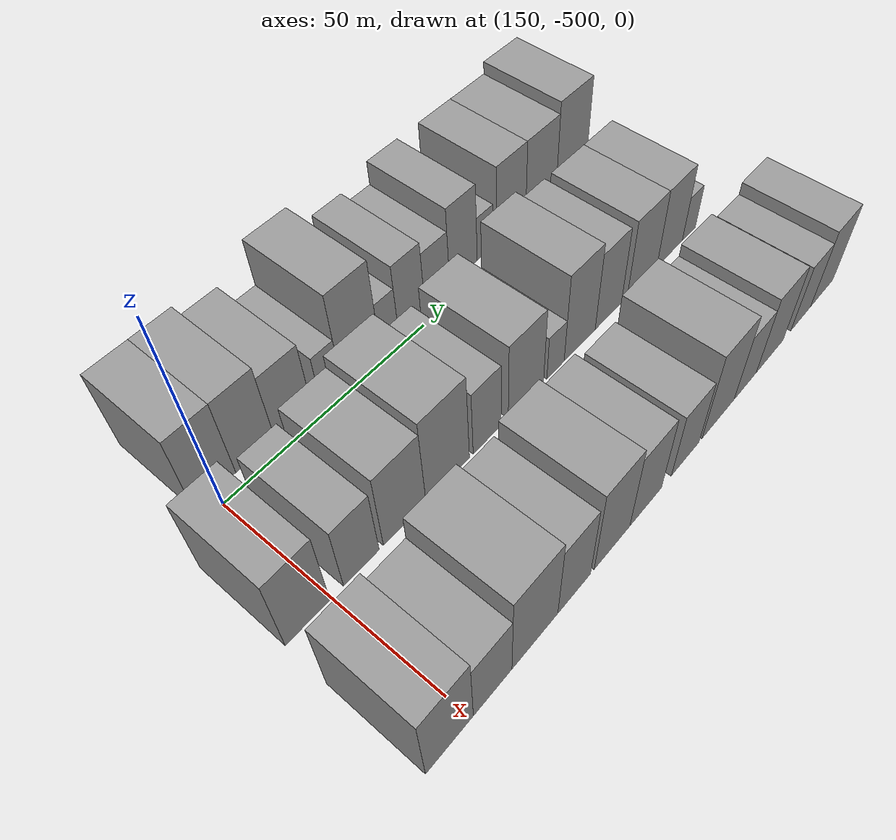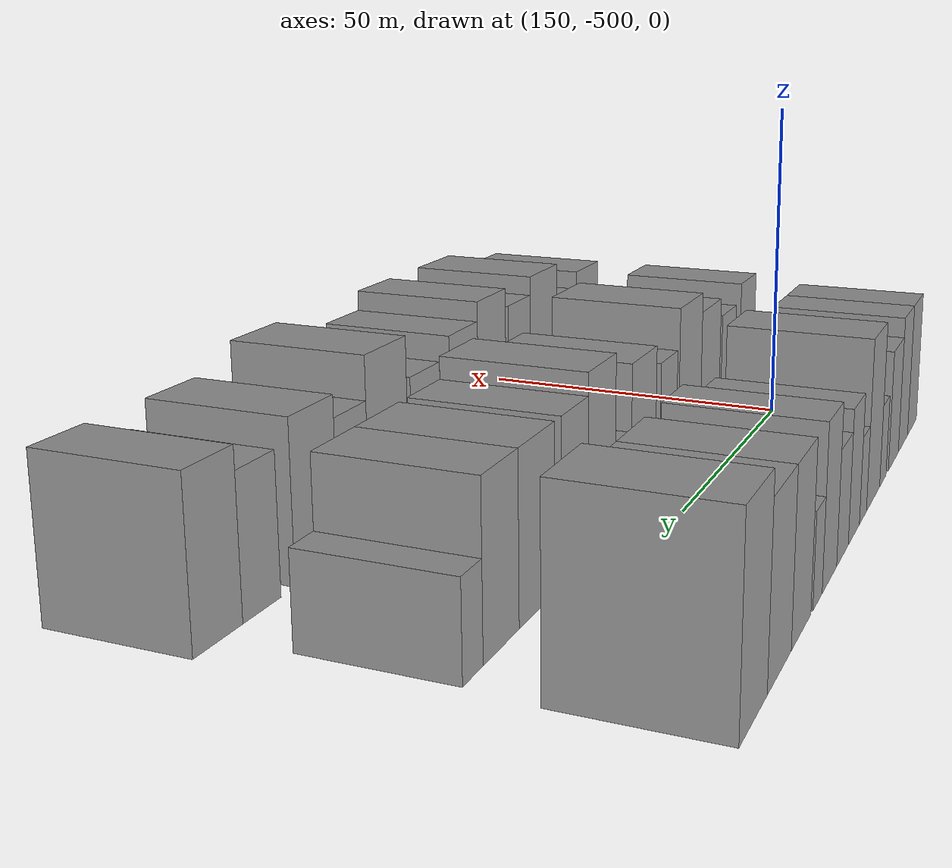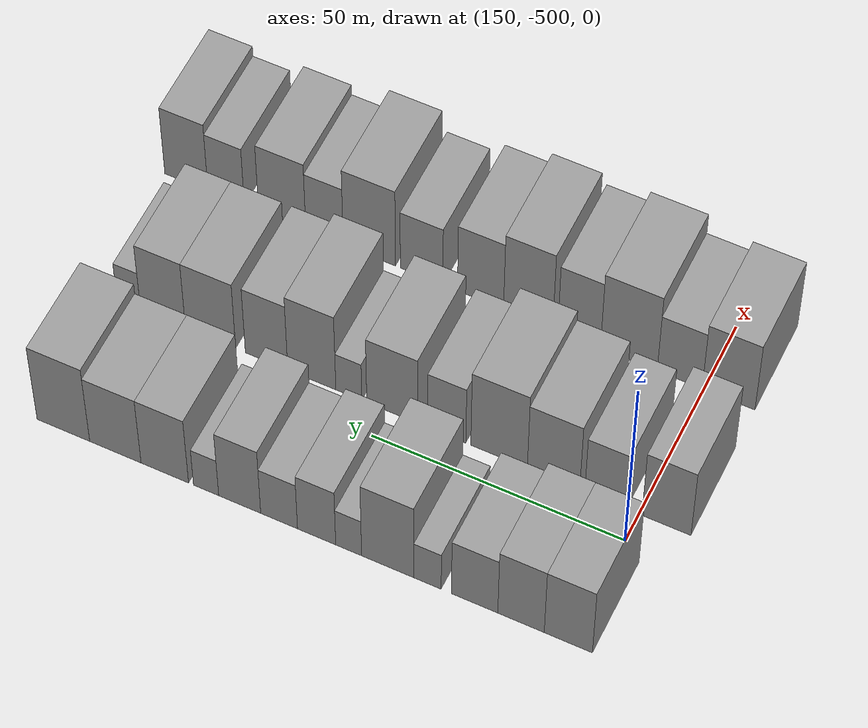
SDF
<sdf version="1.6">
 <world name="default">
  <model name="building_329">
   <static>1</static>
   <pose>137.0000 -499.2824 0 0.000000 0.000000 0.000000</pose>
   <link name="link">
    <pose>0 0 10.50 0 0 0</pose>
    <collision name="collision"><geometry><box><size>20.0000 9.2402 21.0000</size></box></geometry></collision>
    <visual name="visual">
     <cast_shadows>0</cast_shadows>
     <geometry><box><size>20.0000 9.2402 21.0000</size></box></geometry>
     <material>
      <script>
       <uri>model://grey_wall/materials/scripts</uri>
       <uri>model://grey_wall/materials/textures</uri>
       <name>vrc/grey_wall</name>
      </script>
     </material>
    </visual>
   </link>
  </model>
  <model name="building_330">
   <static>1</static>
   <pose>137.0000 -490.1812 0 0.000000 0.000000 0.000000</pose>
   <link name="link">
    <pose>0 0 10.50 0 0 0</pose>
    <collision name="collision"><geometry><box><size>20.0000 8.9622 21.0000</size></box></geometry></collision>
    <visual name="visual">
     <cast_shadows>0</cast_shadows>
     <geometry><box><size>20.0000 8.9622 21.0000</size></box></geometry>
     <material>
      <script>
       <uri>model://grey_wall/materials/scripts</uri>
       <uri>model://grey_wall/materials/textures</uri>
       <name>vrc/grey_wall</name>
      </script>
     </material>
    </visual>
   </link>
  </model>
  <model name="building_331">
   <static>1</static>
   <pose>137.0000 -481.2010 0 0.000000 0.000000 0.000000</pose>
   <link name="link">
    <pose>0 0 9.00 0 0 0</pose>
    <collision name="collision"><geometry><box><size>20.0000 8.9981 18.0000</size></box></geometry></collision>
    <visual name="visual">
     <cast_shadows>0</cast_shadows>
     <geometry><box><size>20.0000 8.9981 18.0000</size></box></geometry>
     <material>
      <script>
       <uri>model://grey_wall/materials/scripts</uri>
       <uri>model://grey_wall/materials/textures</uri>
       <name>vrc/grey_wall</name>
      </script>
     </material>
    </visual>
   </link>
  </model>
  <model name="building_332">
   <static>1</static>
   <pose>137.0000 -472.0316 0 0.000000 0.000000 0.000000</pose>
   <link name="link">
    <pose>0 0 6.00 0 0 0</pose>
    <collision name="collision"><geometry><box><size>20.0000 5.3407 12.0000</size></box></geometry></collision>
    <visual name="visual">
     <cast_shadows>0</cast_shadows>
     <geometry><box><size>20.0000 5.3407 12.0000</size></box></geometry>
     <material>
      <script>
       <uri>model://grey_wall/materials/scripts</uri>
       <uri>model://grey_wall/materials/textures</uri>
       <name>vrc/grey_wall</name>
      </script>
     </material>
    </visual>
   </link>
  </model>
  <model name="building_333">
   <static>1</static>
   <pose>137.0000 -464.2401 0 0.000000 0.000000 0.000000</pose>
   <link name="link">
    <pose>0 0 12.00 0 0 0</pose>
    <collision name="collision"><geometry><box><size>20.0000 10.2423 24.0000</size></box></geometry></collision>
    <visual name="visual">
     <cast_shadows>0</cast_shadows>
     <geometry><box><size>20.0000 10.2423 24.0000</size></box></geometry>
     <material>
      <script>
       <uri>model://grey_wall/materials/scripts</uri>
       <uri>model://grey_wall/materials/textures</uri>
       <name>vrc/grey_wall</name>
      </script>
     </material>
    </visual>
   </link>
  </model>
  <model name="building_334">
   <static>1</static>
   <pose>137.0000 -456.5639 0 0.000000 0.000000 0.000000</pose>
   <link name="link">
    <pose>0 0 6.00 0 0 0</pose>
    <collision name="collision"><geometry><box><size>20.0000 5.1101 12.0000</size></box></geometry></collision>
    <visual name="visual">
     <cast_shadows>0</cast_shadows>
     <geometry><box><size>20.0000 5.1101 12.0000</size></box></geometry>
     <material>
      <script>
       <uri>model://grey_wall/materials/scripts</uri>
       <uri>model://grey_wall/materials/textures</uri>
       <name>vrc/grey_wall</name>
      </script>
     </material>
    </visual>
   </link>
  </model>
  <model name="building_335">
   <static>1</static>
   <pose>137.0000 -450.2246 0 0.000000 0.000000 0.000000</pose>
   <link name="link">
    <pose>0 0 9.00 0 0 0</pose>
    <collision name="collision"><geometry><box><size>20.0000 7.5686 18.0000</size></box></geometry></collision>
    <visual name="visual">
     <cast_shadows>0</cast_shadows>
     <geometry><box><size>20.0000 7.5686 18.0000</size></box></geometry>
     <material>
      <script>
       <uri>model://grey_wall/materials/scripts</uri>
       <uri>model://grey_wall/materials/textures</uri>
       <name>vrc/grey_wall</name>
      </script>
     </material>
    </visual>
   </link>
  </model>
  <model name="building_336">
   <static>1</static>
   <pose>137.0000 -442.7728 0 0.000000 0.000000 0.000000</pose>
   <link name="link">
    <pose>0 0 7.50 0 0 0</pose>
    <collision name="collision"><geometry><box><size>20.0000 7.3348 15.0000</size></box></geometry></collision>
    <visual name="visual">
     <cast_shadows>0</cast_shadows>
     <geometry><box><size>20.0000 7.3348 15.0000</size></box></geometry>
     <material>
      <script>
       <uri>model://grey_wall/materials/scripts</uri>
       <uri>model://grey_wall/materials/textures</uri>
       <name>vrc/grey_wall</name>
      </script>
     </material>
    </visual>
   </link>
  </model>
  <model name="building_337">
   <static>1</static>
   <pose>137.0000 -434.9035 0 0.000000 0.000000 0.000000</pose>
   <link name="link">
    <pose>0 0 10.50 0 0 0</pose>
    <collision name="collision"><geometry><box><size>20.0000 8.4039 21.0000</size></box></geometry></collision>
    <visual name="visual">
     <cast_shadows>0</cast_shadows>
     <geometry><box><size>20.0000 8.4039 21.0000</size></box></geometry>
     <material>
      <script>
       <uri>model://grey_wall/materials/scripts</uri>
       <uri>model://grey_wall/materials/textures</uri>
       <name>vrc/grey_wall</name>
      </script>
     </material>
    </visual>
   </link>
  </model>
  <model name="building_338">
   <static>1</static>
   <pose>137.0000 -428.1678 0 0.000000 0.000000 0.000000</pose>
   <link name="link">
    <pose>0 0 6.00 0 0 0</pose>
    <collision name="collision"><geometry><box><size>20.0000 5.0674 12.0000</size></box></geometry></collision>
    <visual name="visual">
     <cast_shadows>0</cast_shadows>
     <geometry><box><size>20.0000 5.0674 12.0000</size></box></geometry>
     <material>
      <script>
       <uri>model://grey_wall/materials/scripts</uri>
       <uri>model://grey_wall/materials/textures</uri>
       <name>vrc/grey_wall</name>
      </script>
     </material>
    </visual>
   </link>
  </model>
  <model name="building_339">
   <static>1</static>
   <pose>137.0000 -419.8349 0 0.000000 0.000000 0.000000</pose>
   <link name="link">
    <pose>0 0 10.50 0 0 0</pose>
    <collision name="collision"><geometry><box><size>20.0000 9.5983 21.0000</size></box></geometry></collision>
    <visual name="visual">
     <cast_shadows>0</cast_shadows>
     <geometry><box><size>20.0000 9.5983 21.0000</size></box></geometry>
     <material>
      <script>
       <uri>model://grey_wall/materials/scripts</uri>
       <uri>model://grey_wall/materials/textures</uri>
       <name>vrc/grey_wall</name>
      </script>
     </material>
    </visual>
   </link>
  </model>
  <model name="building_340">
   <static>1</static>
   <pose>137.0000 -409.8062 0 0.000000 0.000000 0.000000</pose>
   <link name="link">
    <pose>0 0 10.50 0 0 0</pose>
    <collision name="collision"><geometry><box><size>20.0000 10.4593 21.0000</size></box></geometry></collision>
    <visual name="visual">
     <cast_shadows>0</cast_shadows>
     <geometry><box><size>20.0000 10.4593 21.0000</size></box></geometry>
     <material>
      <script>
       <uri>model://grey_wall/materials/scripts</uri>
       <uri>model://grey_wall/materials/textures</uri>
       <name>vrc/grey_wall</name>
      </script>
     </material>
    </visual>
   </link>
  </model>
  <model name="building_341">
   <static>1</static>
   <pose>137.0000 -399.1866 0 0.000000 0.000000 0.000000</pose>
   <link name="link">
    <pose>0 0 12.00 0 0 0</pose>
    <collision name="collision"><geometry><box><size>20.0000 10.7798 24.0000</size></box></geometry></collision>
    <visual name="visual">
     <cast_shadows>0</cast_shadows>
     <geometry><box><size>20.0000 10.7798 24.0000</size></box></geometry>
     <material>
      <script>
       <uri>model://grey_wall/materials/scripts</uri>
       <uri>model://grey_wall/materials/textures</uri>
       <name>vrc/grey_wall</name>
      </script>
     </material>
    </visual>
   </link>
  </model>
  <model name="building_447">
   <static>1</static>
   <pose>166.0000 -505.2337 0 0.000000 0.000000 0.000000</pose>
   <link name="link">
    <pose>0 0 10.50 0 0 0</pose>
    <collision name="collision"><geometry><box><size>20.0000 9.5325 21.0000</size></box></geometry></collision>
    <visual name="visual">
     <cast_shadows>0</cast_shadows>
     <geometry><box><size>20.0000 9.5325 21.0000</size></box></geometry>
     <material>
      <script>
       <uri>model://grey_wall/materials/scripts</uri>
       <uri>model://grey_wall/materials/textures</uri>
       <name>vrc/grey_wall</name>
      </script>
     </material>
    </visual>
   </link>
  </model>
  <model name="building_448">
   <static>1</static>
   <pose>166.0000 -493.3933 0 0.000000 0.000000 0.000000</pose>
   <link name="link">
    <pose>0 0 9.00 0 0 0</pose>
    <collision name="collision"><geometry><box><size>20.0000 8.1483 18.0000</size></box></geometry></collision>
    <visual name="visual">
     <cast_shadows>0</cast_shadows>
     <geometry><box><size>20.0000 8.1483 18.0000</size></box></geometry>
     <material>
      <script>
       <uri>model://grey_wall/materials/scripts</uri>
       <uri>model://grey_wall/materials/textures</uri>
       <name>vrc/grey_wall</name>
      </script>
     </material>
    </visual>
   </link>
  </model>
  <model name="building_449">
   <static>1</static>
   <pose>166.0000 -483.1605 0 0.000000 0.000000 0.000000</pose>
   <link name="link">
    <pose>0 0 10.50 0 0 0</pose>
    <collision name="collision"><geometry><box><size>20.0000 10.3173 21.0000</size></box></geometry></collision>
    <visual name="visual">
     <cast_shadows>0</cast_shadows>
     <geometry><box><size>20.0000 10.3173 21.0000</size></box></geometry>
     <material>
      <script>
       <uri>model://grey_wall/materials/scripts</uri>
       <uri>model://grey_wall/materials/textures</uri>
       <name>vrc/grey_wall</name>
      </script>
     </material>
    </visual>
   </link>
  </model>
  <model name="building_450">
   <static>1</static>
   <pose>166.0000 -472.3981 0 0.000000 0.000000 0.000000</pose>
   <link name="link">
    <pose>0 0 12.00 0 0 0</pose>
    <collision name="collision"><geometry><box><size>20.0000 11.2076 24.0000</size></box></geometry></collision>
    <visual name="visual">
     <cast_shadows>0</cast_shadows>
     <geometry><box><size>20.0000 11.2076 24.0000</size></box></geometry>
     <material>
      <script>
       <uri>model://grey_wall/materials/scripts</uri>
       <uri>model://grey_wall/materials/textures</uri>
       <name>vrc/grey_wall</name>
      </script>
     </material>
    </visual>
   </link>
  </model>
  <model name="building_451">
   <static>1</static>
   <pose>166.0000 -461.9822 0 0.000000 0.000000 0.000000</pose>
   <link name="link">
    <pose>0 0 9.00 0 0 0</pose>
    <collision name="collision"><geometry><box><size>20.0000 7.6242 18.0000</size></box></geometry></collision>
    <visual name="visual">
     <cast_shadows>0</cast_shadows>
     <geometry><box><size>20.0000 7.6242 18.0000</size></box></geometry>
     <material>
      <script>
       <uri>model://grey_wall/materials/scripts</uri>
       <uri>model://grey_wall/materials/textures</uri>
       <name>vrc/grey_wall</name>
      </script>
     </material>
    </visual>
   </link>
  </model>
  <model name="building_452">
   <static>1</static>
   <pose>166.0000 -451.0585 0 0.000000 0.000000 0.000000</pose>
   <link name="link">
    <pose>0 0 10.50 0 0 0</pose>
    <collision name="collision"><geometry><box><size>20.0000 10.2232 21.0000</size></box></geometry></collision>
    <visual name="visual">
     <cast_shadows>0</cast_shadows>
     <geometry><box><size>20.0000 10.2232 21.0000</size></box></geometry>
     <material>
      <script>
       <uri>model://grey_wall/materials/scripts</uri>
       <uri>model://grey_wall/materials/textures</uri>
       <name>vrc/grey_wall</name>
      </script>
     </material>
    </visual>
   </link>
  </model>
  <model name="building_453">
   <static>1</static>
   <pose>166.0000 -442.3233 0 0.000000 0.000000 0.000000</pose>
   <link name="link">
    <pose>0 0 6.00 0 0 0</pose>
    <collision name="collision"><geometry><box><size>20.0000 5.2472 12.0000</size></box></geometry></collision>
    <visual name="visual">
     <cast_shadows>0</cast_shadows>
     <geometry><box><size>20.0000 5.2472 12.0000</size></box></geometry>
     <material>
      <script>
       <uri>model://grey_wall/materials/scripts</uri>
       <uri>model://grey_wall/materials/textures</uri>
       <name>vrc/grey_wall</name>
      </script>
     </material>
    </visual>
   </link>
  </model>
  <model name="building_454">
   <static>1</static>
   <pose>166.0000 -434.8086 0 0.000000 0.000000 0.000000</pose>
   <link name="link">
    <pose>0 0 12.00 0 0 0</pose>
    <collision name="collision"><geometry><box><size>20.0000 9.7822 24.0000</size></box></geometry></collision>
    <visual name="visual">
     <cast_shadows>0</cast_shadows>
     <geometry><box><size>20.0000 9.7822 24.0000</size></box></geometry>
     <material>
      <script>
       <uri>model://grey_wall/materials/scripts</uri>
       <uri>model://grey_wall/materials/textures</uri>
       <name>vrc/grey_wall</name>
      </script>
     </material>
    </visual>
   </link>
  </model>
  <model name="building_455">
   <static>1</static>
   <pose>166.0000 -425.5867 0 0.000000 0.000000 0.000000</pose>
   <link name="link">
    <pose>0 0 10.50 0 0 0</pose>
    <collision name="collision"><geometry><box><size>20.0000 8.6617 21.0000</size></box></geometry></collision>
    <visual name="visual">
     <cast_shadows>0</cast_shadows>
     <geometry><box><size>20.0000 8.6617 21.0000</size></box></geometry>
     <material>
      <script>
       <uri>model://grey_wall/materials/scripts</uri>
       <uri>model://grey_wall/materials/textures</uri>
       <name>vrc/grey_wall</name>
      </script>
     </material>
    </visual>
   </link>
  </model>
  <model name="building_456">
   <static>1</static>
   <pose>166.0000 -414.0834 0 0.000000 0.000000 0.000000</pose>
   <link name="link">
    <pose>0 0 10.50 0 0 0</pose>
    <collision name="collision"><geometry><box><size>20.0000 10.3449 21.0000</size></box></geometry></collision>
    <visual name="visual">
     <cast_shadows>0</cast_shadows>
     <geometry><box><size>20.0000 10.3449 21.0000</size></box></geometry>
     <material>
      <script>
       <uri>model://grey_wall/materials/scripts</uri>
       <uri>model://grey_wall/materials/textures</uri>
       <name>vrc/grey_wall</name>
      </script>
     </material>
    </visual>
   </link>
  </model>
  <model name="building_457">
   <static>1</static>
   <pose>166.0000 -404.2522 0 0.000000 0.000000 0.000000</pose>
   <link name="link">
    <pose>0 0 10.50 0 0 0</pose>
    <collision name="collision"><geometry><box><size>20.0000 9.3176 21.0000</size></box></geometry></collision>
    <visual name="visual">
     <cast_shadows>0</cast_shadows>
     <geometry><box><size>20.0000 9.3176 21.0000</size></box></geometry>
     <material>
      <script>
       <uri>model://grey_wall/materials/scripts</uri>
       <uri>model://grey_wall/materials/textures</uri>
       <name>vrc/grey_wall</name>
      </script>
     </material>
    </visual>
   </link>
  </model>
  <model name="building_458">
   <static>1</static>
   <pose>166.0000 -397.1398 0 0.000000 0.000000 0.000000</pose>
   <link name="link">
    <pose>0 0 6.00 0 0 0</pose>
    <collision name="collision"><geometry><box><size>20.0000 4.9072 12.0000</size></box></geometry></collision>
    <visual name="visual">
     <cast_shadows>0</cast_shadows>
     <geometry><box><size>20.0000 4.9072 12.0000</size></box></geometry>
     <material>
      <script>
       <uri>model://grey_wall/materials/scripts</uri>
       <uri>model://grey_wall/materials/textures</uri>
       <name>vrc/grey_wall</name>
      </script>
     </material>
    </visual>
   </link>
  </model>
  <model name="building_565">
   <static>1</static>
   <pose>195.0000 -504.7938 0 0.000000 0.000000 0.000000</pose>
   <link name="link">
    <pose>0 0 10.50 0 0 0</pose>
    <collision name="collision"><geometry><box><size>20.0000 10.4124 21.0000</size></box></geometry></collision>
    <visual name="visual">
     <cast_shadows>0</cast_shadows>
     <geometry><box><size>20.0000 10.4124 21.0000</size></box></geometry>
     <material>
      <script>
       <uri>model://grey_wall/materials/scripts</uri>
       <uri>model://grey_wall/materials/textures</uri>
       <name>vrc/grey_wall</name>
      </script>
     </material>
    </visual>
   </link>
  </model>
  <model name="building_566">
   <static>1</static>
   <pose>195.0000 -495.1299 0 0.000000 0.000000 0.000000</pose>
   <link name="link">
    <pose>0 0 9.00 0 0 0</pose>
    <collision name="collision"><geometry><box><size>20.0000 8.9155 18.0000</size></box></geometry></collision>
    <visual name="visual">
     <cast_shadows>0</cast_shadows>
     <geometry><box><size>20.0000 8.9155 18.0000</size></box></geometry>
     <material>
      <script>
       <uri>model://grey_wall/materials/scripts</uri>
       <uri>model://grey_wall/materials/textures</uri>
       <name>vrc/grey_wall</name>
      </script>
     </material>
    </visual>
   </link>
  </model>
  <model name="building_567">
   <static>1</static>
   <pose>195.0000 -484.9989 0 0.000000 0.000000 0.000000</pose>
   <link name="link">
    <pose>0 0 12.00 0 0 0</pose>
    <collision name="collision"><geometry><box><size>20.0000 11.3464 24.0000</size></box></geometry></collision>
    <visual name="visual">
     <cast_shadows>0</cast_shadows>
     <geometry><box><size>20.0000 11.3464 24.0000</size></box></geometry>
     <material>
      <script>
       <uri>model://grey_wall/materials/scripts</uri>
       <uri>model://grey_wall/materials/textures</uri>
       <name>vrc/grey_wall</name>
      </script>
     </material>
    </visual>
   </link>
  </model>
  <model name="building_568">
   <static>1</static>
   <pose>195.0000 -475.0340 0 0.000000 0.000000 0.000000</pose>
   <link name="link">
    <pose>0 0 10.50 0 0 0</pose>
    <collision name="collision"><geometry><box><size>20.0000 8.5834 21.0000</size></box></geometry></collision>
    <visual name="visual">
     <cast_shadows>0</cast_shadows>
     <geometry><box><size>20.0000 8.5834 21.0000</size></box></geometry>
     <material>
      <script>
       <uri>model://grey_wall/materials/scripts</uri>
       <uri>model://grey_wall/materials/textures</uri>
       <name>vrc/grey_wall</name>
      </script>
     </material>
    </visual>
   </link>
  </model>
  <model name="building_569">
   <static>1</static>
   <pose>195.0000 -464.7588 0 0.000000 0.000000 0.000000</pose>
   <link name="link">
    <pose>0 0 12.00 0 0 0</pose>
    <collision name="collision"><geometry><box><size>20.0000 9.9670 24.0000</size></box></geometry></collision>
    <visual name="visual">
     <cast_shadows>0</cast_shadows>
     <geometry><box><size>20.0000 9.9670 24.0000</size></box></geometry>
     <material>
      <script>
       <uri>model://grey_wall/materials/scripts</uri>
       <uri>model://grey_wall/materials/textures</uri>
       <name>vrc/grey_wall</name>
      </script>
     </material>
    </visual>
   </link>
  </model>
  <model name="building_570">
   <static>1</static>
   <pose>195.0000 -455.0877 0 0.000000 0.000000 0.000000</pose>
   <link name="link">
    <pose>0 0 10.50 0 0 0</pose>
    <collision name="collision"><geometry><box><size>20.0000 9.3752 21.0000</size></box></geometry></collision>
    <visual name="visual">
     <cast_shadows>0</cast_shadows>
     <geometry><box><size>20.0000 9.3752 21.0000</size></box></geometry>
     <material>
      <script>
       <uri>model://grey_wall/materials/scripts</uri>
       <uri>model://grey_wall/materials/textures</uri>
       <name>vrc/grey_wall</name>
      </script>
     </material>
    </visual>
   </link>
  </model>
  <model name="building_571">
   <static>1</static>
   <pose>195.0000 -443.0427 0 0.000000 0.000000 0.000000</pose>
   <link name="link">
    <pose>0 0 9.00 0 0 0</pose>
    <collision name="collision"><geometry><box><size>20.0000 8.7148 18.0000</size></box></geometry></collision>
    <visual name="visual">
     <cast_shadows>0</cast_shadows>
     <geometry><box><size>20.0000 8.7148 18.0000</size></box></geometry>
     <material>
      <script>
       <uri>model://grey_wall/materials/scripts</uri>
       <uri>model://grey_wall/materials/textures</uri>
       <name>vrc/grey_wall</name>
      </script>
     </material>
    </visual>
   </link>
  </model>
  <model name="building_572">
   <static>1</static>
   <pose>195.0000 -432.2899 0 0.000000 0.000000 0.000000</pose>
   <link name="link">
    <pose>0 0 12.00 0 0 0</pose>
    <collision name="collision"><geometry><box><size>20.0000 10.7906 24.0000</size></box></geometry></collision>
    <visual name="visual">
     <cast_shadows>0</cast_shadows>
     <geometry><box><size>20.0000 10.7906 24.0000</size></box></geometry>
     <material>
      <script>
       <uri>model://grey_wall/materials/scripts</uri>
       <uri>model://grey_wall/materials/textures</uri>
       <name>vrc/grey_wall</name>
      </script>
     </material>
    </visual>
   </link>
  </model>
  <model name="building_573">
   <static>1</static>
   <pose>195.0000 -422.9969 0 0.000000 0.000000 0.000000</pose>
   <link name="link">
    <pose>0 0 9.00 0 0 0</pose>
    <collision name="collision"><geometry><box><size>20.0000 7.7955 18.0000</size></box></geometry></collision>
    <visual name="visual">
     <cast_shadows>0</cast_shadows>
     <geometry><box><size>20.0000 7.7955 18.0000</size></box></geometry>
     <material>
      <script>
       <uri>model://grey_wall/materials/scripts</uri>
       <uri>model://grey_wall/materials/textures</uri>
       <name>vrc/grey_wall</name>
      </script>
     </material>
    </visual>
   </link>
  </model>
  <model name="building_574">
   <static>1</static>
   <pose>195.0000 -414.1646 0 0.000000 0.000000 0.000000</pose>
   <link name="link">
    <pose>0 0 10.50 0 0 0</pose>
    <collision name="collision"><geometry><box><size>20.0000 9.8691 21.0000</size></box></geometry></collision>
    <visual name="visual">
     <cast_shadows>0</cast_shadows>
     <geometry><box><size>20.0000 9.8691 21.0000</size></box></geometry>
     <material>
      <script>
       <uri>model://grey_wall/materials/scripts</uri>
       <uri>model://grey_wall/materials/textures</uri>
       <name>vrc/grey_wall</name>
      </script>
     </material>
    </visual>
   </link>
  </model>
  <model name="building_575">
   <static>1</static>
   <pose>195.0000 -402.4021 0 0.000000 0.000000 0.000000</pose>
   <link name="link">
    <pose>0 0 9.00 0 0 0</pose>
    <collision name="collision"><geometry><box><size>20.0000 7.6559 18.0000</size></box></geometry></collision>
    <visual name="visual">
     <cast_shadows>0</cast_shadows>
     <geometry><box><size>20.0000 7.6559 18.0000</size></box></geometry>
     <material>
      <script>
       <uri>model://grey_wall/materials/scripts</uri>
       <uri>model://grey_wall/materials/textures</uri>
       <name>vrc/grey_wall</name>
      </script>
     </material>
    </visual>
   </link>
  </model>
  <model name="building_576">
   <static>1</static>
   <pose>195.0000 -394.0129 0 0.000000 0.000000 0.000000</pose>
   <link name="link">
    <pose>0 0 10.50 0 0 0</pose>
    <collision name="collision"><geometry><box><size>20.0000 9.1226 21.0000</size></box></geometry></collision>
    <visual name="visual">
     <cast_shadows>0</cast_shadows>
     <geometry><box><size>20.0000 9.1226 21.0000</size></box></geometry>
     <material>
      <script>
       <uri>model://grey_wall/materials/scripts</uri>
       <uri>model://grey_wall/materials/textures</uri>
       <name>vrc/grey_wall</name>
      </script>
     </material>
    </visual>
   </link>
  </model>
 </world>
</sdf>
